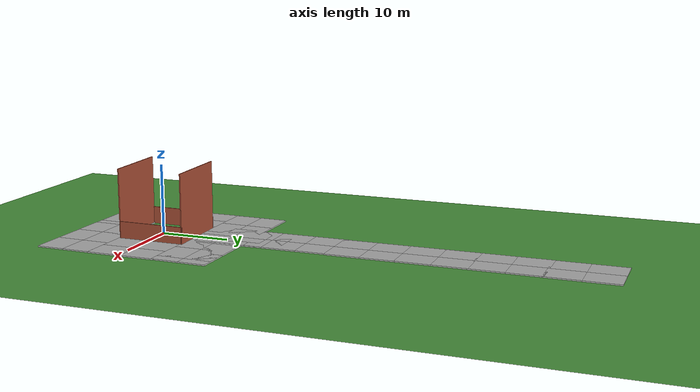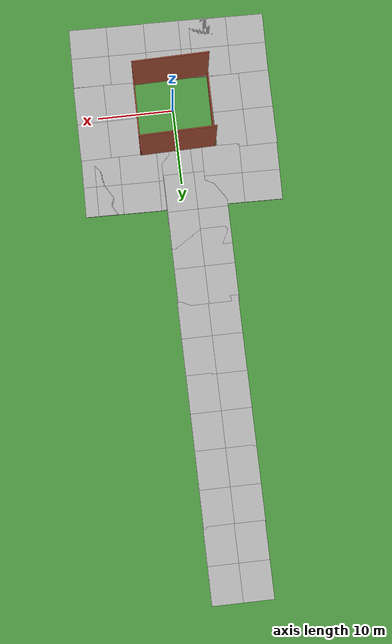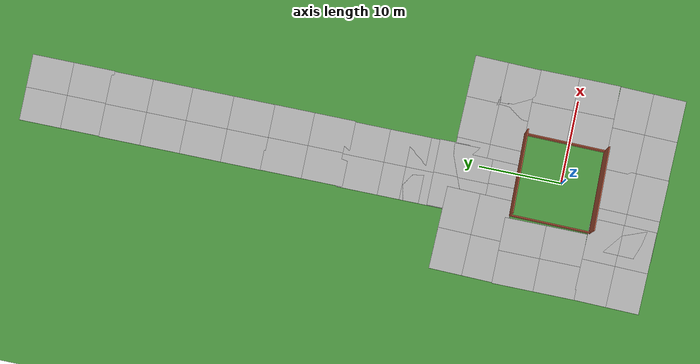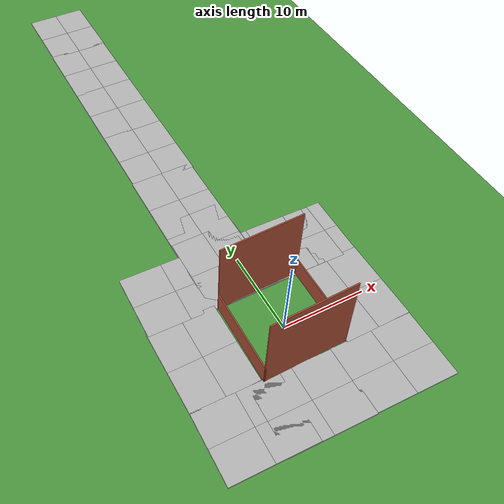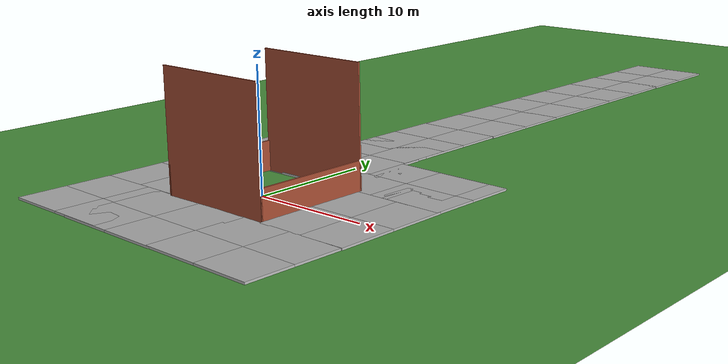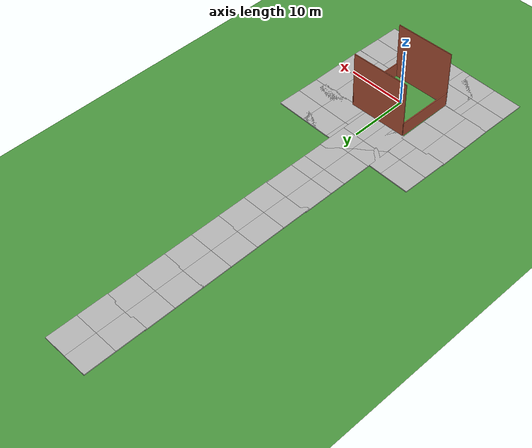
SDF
<sdf version="1.6">
 <world name="default">
  <light name="sun" type="directional">
   <pose>0 0 10 0 -0 0</pose>
   <diffuse>0.8 0.8 0.8 1</diffuse>
   <specular>0.2 0.2 0.2 1</specular>
   <attenuation>
    <range>1000</range>
    <constant>0.9</constant>
    <linear>0.01</linear>
    <quadratic>0.001</quadratic>
   </attenuation>
   <direction>-0.5 0.1 -0.9</direction>
  </light>
  <model name="ground_plane">
   <static>1</static>
   <link name="link">
    <collision name="collision">
     <geometry><plane><normal>0 0 1</normal><size>130 130</size></plane></geometry>
     <surface>
      <contact><collide_bitmask>65535</collide_bitmask></contact>
      <friction><ode><mu>100</mu><mu2>50</mu2></ode></friction>
     </surface>
    </collision>
    <visual name="visual">
     <cast_shadows>0</cast_shadows>
     <geometry><plane><normal>0 0 1</normal><size>130 130</size></plane></geometry>
     <material>
      <script><uri>file://media/materials/scripts/gazebo.material</uri><name>Gazebo/Grass</name></script>
     </material>
    </visual>
   </link>
  </model>
  <gravity>0 0 -9.8</gravity>
  <magnetic_field>6e-06 2.3e-05 -4.2e-05</magnetic_field>
  <atmosphere type="adiabatic"/>
  <physics name="default_physics" default="0" type="ode">
   <max_step_size>0.001</max_step_size>
   <real_time_factor>1</real_time_factor>
   <real_time_update_rate>1000</real_time_update_rate>
  </physics>
  <scene><ambient>0.4 0.4 0.4 1</ambient><background>0.7 0.7 0.7 1</background><shadows>1</shadows></scene>
  <audio><device>default</device></audio>
  <spherical_coordinates>
   <surface_model>EARTH_WGS84</surface_model>
   <latitude_deg>0</latitude_deg>
   <longitude_deg>0</longitude_deg>
   <elevation>0</elevation>
   <heading_deg>0</heading_deg>
  </spherical_coordinates>
  <model name="mud_box">
   <static>1</static>
   <link name="link">
    <collision name="collision"><geometry><box><size>8 10 0.2</size></box></geometry></collision>
    <visual name="visual_1">
     <pose>-2 2.5 0 0 -0 0</pose>
     <cast_shadows>0</cast_shadows>
     <geometry><box><size>4 5 0.2</size></box></geometry>
     <material>
      <script>
       <uri>model://mud_box/materials/scripts</uri>
       <uri>model://mud_box/materials/textures</uri>
       <name>vrc/mud</name>
      </script>
     </material>
    </visual>
    <visual name="visual_2">
     <pose>2 2.5 0 0 -0 0</pose>
     <cast_shadows>0</cast_shadows>
     <geometry><box><size>4 5 0.2</size></box></geometry>
     <material>
      <script>
       <uri>model://mud_box/materials/scripts</uri>
       <uri>model://mud_box/materials/textures</uri>
       <name>vrc/mud</name>
      </script>
     </material>
    </visual>
    <visual name="visual_3">
     <pose>2 -2.5 0 0 -0 0</pose>
     <cast_shadows>0</cast_shadows>
     <geometry><box><size>4 5 0.2</size></box></geometry>
     <material>
      <script>
       <uri>model://mud_box/materials/scripts</uri>
       <uri>model://mud_box/materials/textures</uri>
       <name>vrc/mud</name>
      </script>
     </material>
    </visual>
    <visual name="visual_4">
     <pose>-2 -2.5 0 0 -0 0</pose>
     <cast_shadows>0</cast_shadows>
     <geometry><box><size>4 5 0.2</size></box></geometry>
     <material>
      <script>
       <uri>model://mud_box/materials/scripts</uri>
       <uri>model://mud_box/materials/textures</uri>
       <name>vrc/mud</name>
      </script>
     </material>
    </visual>
   </link>
   <pose>-1.61006 59.86 0 0 -0 0</pose>
  </model>
  <model name="mud_box_clone">
   <static>1</static>
   <link name="link">
    <collision name="collision"><geometry><box><size>8 10 0.2</size></box></geometry></collision>
    <visual name="visual_1">
     <pose>-2 2.5 0 0 -0 0</pose>
     <cast_shadows>0</cast_shadows>
     <geometry><box><size>4 5 0.2</size></box></geometry>
     <material>
      <script>
       <uri>model://mud_box/materials/scripts</uri>
       <uri>model://mud_box/materials/textures</uri>
       <name>vrc/mud</name>
      </script>
     </material>
    </visual>
    <visual name="visual_2">
     <pose>2 2.5 0 0 -0 0</pose>
     <cast_shadows>0</cast_shadows>
     <geometry><box><size>4 5 0.2</size></box></geometry>
     <material>
      <script>
       <uri>model://mud_box/materials/scripts</uri>
       <uri>model://mud_box/materials/textures</uri>
       <name>vrc/mud</name>
      </script>
     </material>
    </visual>
    <visual name="visual_3">
     <pose>2 -2.5 0 0 -0 0</pose>
     <cast_shadows>0</cast_shadows>
     <geometry><box><size>4 5 0.2</size></box></geometry>
     <material>
      <script>
       <uri>model://mud_box/materials/scripts</uri>
       <uri>model://mud_box/materials/textures</uri>
       <name>vrc/mud</name>
      </script>
     </material>
    </visual>
    <visual name="visual_4">
     <pose>-2 -2.5 0 0 -0 0</pose>
     <cast_shadows>0</cast_shadows>
     <geometry><box><size>4 5 0.2</size></box></geometry>
     <material>
      <script>
       <uri>model://mud_box/materials/scripts</uri>
       <uri>model://mud_box/materials/textures</uri>
       <name>vrc/mud</name>
      </script>
     </material>
    </visual>
   </link>
   <pose>-1.6726 50.1755 0 0 -0 0</pose>
  </model>
  <model name="mud_box_clone_0">
   <static>1</static>
   <link name="link">
    <collision name="collision"><geometry><box><size>8 10 0.2</size></box></geometry></collision>
    <visual name="visual_1">
     <pose>-2 2.5 0 0 -0 0</pose>
     <cast_shadows>0</cast_shadows>
     <geometry><box><size>4 5 0.2</size></box></geometry>
     <material>
      <script>
       <uri>model://mud_box/materials/scripts</uri>
       <uri>model://mud_box/materials/textures</uri>
       <name>vrc/mud</name>
      </script>
     </material>
    </visual>
    <visual name="visual_2">
     <pose>2 2.5 0 0 -0 0</pose>
     <cast_shadows>0</cast_shadows>
     <geometry><box><size>4 5 0.2</size></box></geometry>
     <material>
      <script>
       <uri>model://mud_box/materials/scripts</uri>
       <uri>model://mud_box/materials/textures</uri>
       <name>vrc/mud</name>
      </script>
     </material>
    </visual>
    <visual name="visual_3">
     <pose>2 -2.5 0 0 -0 0</pose>
     <cast_shadows>0</cast_shadows>
     <geometry><box><size>4 5 0.2</size></box></geometry>
     <material>
      <script>
       <uri>model://mud_box/materials/scripts</uri>
       <uri>model://mud_box/materials/textures</uri>
       <name>vrc/mud</name>
      </script>
     </material>
    </visual>
    <visual name="visual_4">
     <pose>-2 -2.5 0 0 -0 0</pose>
     <cast_shadows>0</cast_shadows>
     <geometry><box><size>4 5 0.2</size></box></geometry>
     <material>
      <script>
       <uri>model://mud_box/materials/scripts</uri>
       <uri>model://mud_box/materials/textures</uri>
       <name>vrc/mud</name>
      </script>
     </material>
    </visual>
   </link>
   <pose>-1.67507 40.3539 0 0 -0 0</pose>
  </model>
  <model name="mud_box_clone_1">
   <static>1</static>
   <link name="link">
    <collision name="collision"><geometry><box><size>8 10 0.2</size></box></geometry></collision>
    <visual name="visual_1">
     <pose>-2 2.5 0 0 -0 0</pose>
     <cast_shadows>0</cast_shadows>
     <geometry><box><size>4 5 0.2</size></box></geometry>
     <material>
      <script>
       <uri>model://mud_box/materials/scripts</uri>
       <uri>model://mud_box/materials/textures</uri>
       <name>vrc/mud</name>
      </script>
     </material>
    </visual>
    <visual name="visual_2">
     <pose>2 2.5 0 0 -0 0</pose>
     <cast_shadows>0</cast_shadows>
     <geometry><box><size>4 5 0.2</size></box></geometry>
     <material>
      <script>
       <uri>model://mud_box/materials/scripts</uri>
       <uri>model://mud_box/materials/textures</uri>
       <name>vrc/mud</name>
      </script>
     </material>
    </visual>
    <visual name="visual_3">
     <pose>2 -2.5 0 0 -0 0</pose>
     <cast_shadows>0</cast_shadows>
     <geometry><box><size>4 5 0.2</size></box></geometry>
     <material>
      <script>
       <uri>model://mud_box/materials/scripts</uri>
       <uri>model://mud_box/materials/textures</uri>
       <name>vrc/mud</name>
      </script>
     </material>
    </visual>
    <visual name="visual_4">
     <pose>-2 -2.5 0 0 -0 0</pose>
     <cast_shadows>0</cast_shadows>
     <geometry><box><size>4 5 0.2</size></box></geometry>
     <material>
      <script>
       <uri>model://mud_box/materials/scripts</uri>
       <uri>model://mud_box/materials/textures</uri>
       <name>vrc/mud</name>
      </script>
     </material>
    </visual>
   </link>
   <pose>-1.65439 30.5223 0 0 -0 0</pose>
  </model>
  <model name="mud_box_clone_2">
   <static>1</static>
   <link name="link">
    <collision name="collision"><geometry><box><size>8 10 0.2</size></box></geometry></collision>
    <visual name="visual_1">
     <pose>-2 2.5 0 0 -0 0</pose>
     <cast_shadows>0</cast_shadows>
     <geometry><box><size>4 5 0.2</size></box></geometry>
     <material>
      <script>
       <uri>model://mud_box/materials/scripts</uri>
       <uri>model://mud_box/materials/textures</uri>
       <name>vrc/mud</name>
      </script>
     </material>
    </visual>
    <visual name="visual_2">
     <pose>2 2.5 0 0 -0 0</pose>
     <cast_shadows>0</cast_shadows>
     <geometry><box><size>4 5 0.2</size></box></geometry>
     <material>
      <script>
       <uri>model://mud_box/materials/scripts</uri>
       <uri>model://mud_box/materials/textures</uri>
       <name>vrc/mud</name>
      </script>
     </material>
    </visual>
    <visual name="visual_3">
     <pose>2 -2.5 0 0 -0 0</pose>
     <cast_shadows>0</cast_shadows>
     <geometry><box><size>4 5 0.2</size></box></geometry>
     <material>
      <script>
       <uri>model://mud_box/materials/scripts</uri>
       <uri>model://mud_box/materials/textures</uri>
       <name>vrc/mud</name>
      </script>
     </material>
    </visual>
    <visual name="visual_4">
     <pose>-2 -2.5 0 0 -0 0</pose>
     <cast_shadows>0</cast_shadows>
     <geometry><box><size>4 5 0.2</size></box></geometry>
     <material>
      <script>
       <uri>model://mud_box/materials/scripts</uri>
       <uri>model://mud_box/materials/textures</uri>
       <name>vrc/mud</name>
      </script>
     </material>
    </visual>
   </link>
   <pose>-1.75094 21.2661 0 0 -0 0</pose>
  </model>
  <model name="mud_box_clone_3">
   <static>1</static>
   <link name="link">
    <collision name="collision"><geometry><box><size>8 10 0.2</size></box></geometry></collision>
    <visual name="visual_1">
     <pose>-2 2.5 0 0 -0 0</pose>
     <cast_shadows>0</cast_shadows>
     <geometry><box><size>4 5 0.2</size></box></geometry>
     <material>
      <script>
       <uri>model://mud_box/materials/scripts</uri>
       <uri>model://mud_box/materials/textures</uri>
       <name>vrc/mud</name>
      </script>
     </material>
    </visual>
    <visual name="visual_2">
     <pose>2 2.5 0 0 -0 0</pose>
     <cast_shadows>0</cast_shadows>
     <geometry><box><size>4 5 0.2</size></box></geometry>
     <material>
      <script>
       <uri>model://mud_box/materials/scripts</uri>
       <uri>model://mud_box/materials/textures</uri>
       <name>vrc/mud</name>
      </script>
     </material>
    </visual>
    <visual name="visual_3">
     <pose>2 -2.5 0 0 -0 0</pose>
     <cast_shadows>0</cast_shadows>
     <geometry><box><size>4 5 0.2</size></box></geometry>
     <material>
      <script>
       <uri>model://mud_box/materials/scripts</uri>
       <uri>model://mud_box/materials/textures</uri>
       <name>vrc/mud</name>
      </script>
     </material>
    </visual>
    <visual name="visual_4">
     <pose>-2 -2.5 0 0 -0 0</pose>
     <cast_shadows>0</cast_shadows>
     <geometry><box><size>4 5 0.2</size></box></geometry>
     <material>
      <script>
       <uri>model://mud_box/materials/scripts</uri>
       <uri>model://mud_box/materials/textures</uri>
       <name>vrc/mud</name>
      </script>
     </material>
    </visual>
   </link>
   <pose>-1.76053 13.5904 0 0 -0 0</pose>
  </model>
  <model name="mud_box_clone_3_clone">
   <static>1</static>
   <link name="link">
    <collision name="collision"><geometry><box><size>8 10 0.2</size></box></geometry></collision>
    <visual name="visual_1">
     <pose>-2 2.5 0 0 -0 0</pose>
     <cast_shadows>0</cast_shadows>
     <geometry><box><size>4 5 0.2</size></box></geometry>
     <material>
      <script>
       <uri>model://mud_box/materials/scripts</uri>
       <uri>model://mud_box/materials/textures</uri>
       <name>vrc/mud</name>
      </script>
     </material>
    </visual>
    <visual name="visual_2">
     <pose>2 2.5 0 0 -0 0</pose>
     <cast_shadows>0</cast_shadows>
     <geometry><box><size>4 5 0.2</size></box></geometry>
     <material>
      <script>
       <uri>model://mud_box/materials/scripts</uri>
       <uri>model://mud_box/materials/textures</uri>
       <name>vrc/mud</name>
      </script>
     </material>
    </visual>
    <visual name="visual_3">
     <pose>2 -2.5 0 0 -0 0</pose>
     <cast_shadows>0</cast_shadows>
     <geometry><box><size>4 5 0.2</size></box></geometry>
     <material>
      <script>
       <uri>model://mud_box/materials/scripts</uri>
       <uri>model://mud_box/materials/textures</uri>
       <name>vrc/mud</name>
      </script>
     </material>
    </visual>
    <visual name="visual_4">
     <pose>-2 -2.5 0 0 -0 0</pose>
     <cast_shadows>0</cast_shadows>
     <geometry><box><size>4 5 0.2</size></box></geometry>
     <material>
      <script>
       <uri>model://mud_box/materials/scripts</uri>
       <uri>model://mud_box/materials/textures</uri>
       <name>vrc/mud</name>
      </script>
     </material>
    </visual>
   </link>
   <pose>-1.68944 10.2415 0 0 -0 0</pose>
  </model>
  <model name="mud_box_clone_3_clone_0">
   <static>1</static>
   <link name="link">
    <collision name="collision"><geometry><box><size>8 10 0.2</size></box></geometry></collision>
    <visual name="visual_1">
     <pose>-2 2.5 0 0 -0 0</pose>
     <cast_shadows>0</cast_shadows>
     <geometry><box><size>4 5 0.2</size></box></geometry>
     <material>
      <script>
       <uri>model://mud_box/materials/scripts</uri>
       <uri>model://mud_box/materials/textures</uri>
       <name>vrc/mud</name>
      </script>
     </material>
    </visual>
    <visual name="visual_2">
     <pose>2 2.5 0 0 -0 0</pose>
     <cast_shadows>0</cast_shadows>
     <geometry><box><size>4 5 0.2</size></box></geometry>
     <material>
      <script>
       <uri>model://mud_box/materials/scripts</uri>
       <uri>model://mud_box/materials/textures</uri>
       <name>vrc/mud</name>
      </script>
     </material>
    </visual>
    <visual name="visual_3">
     <pose>2 -2.5 0 0 -0 0</pose>
     <cast_shadows>0</cast_shadows>
     <geometry><box><size>4 5 0.2</size></box></geometry>
     <material>
      <script>
       <uri>model://mud_box/materials/scripts</uri>
       <uri>model://mud_box/materials/textures</uri>
       <name>vrc/mud</name>
      </script>
     </material>
    </visual>
    <visual name="visual_4">
     <pose>-2 -2.5 0 0 -0 0</pose>
     <cast_shadows>0</cast_shadows>
     <geometry><box><size>4 5 0.2</size></box></geometry>
     <material>
      <script>
       <uri>model://mud_box/materials/scripts</uri>
       <uri>model://mud_box/materials/textures</uri>
       <name>vrc/mud</name>
      </script>
     </material>
    </visual>
   </link>
   <pose>7.89791 9.19938 0 0 0 -1.5921</pose>
  </model>
  <model name="mud_box_clone_3_clone_0_clone">
   <static>1</static>
   <link name="link">
    <collision name="collision"><geometry><box><size>8 10 0.2</size></box></geometry></collision>
    <visual name="visual_1">
     <pose>-2 2.5 0 0 -0 0</pose>
     <cast_shadows>0</cast_shadows>
     <geometry><box><size>4 5 0.2</size></box></geometry>
     <material>
      <script>
       <uri>model://mud_box/materials/scripts</uri>
       <uri>model://mud_box/materials/textures</uri>
       <name>vrc/mud</name>
      </script>
     </material>
    </visual>
    <visual name="visual_2">
     <pose>2 2.5 0 0 -0 0</pose>
     <cast_shadows>0</cast_shadows>
     <geometry><box><size>4 5 0.2</size></box></geometry>
     <material>
      <script>
       <uri>model://mud_box/materials/scripts</uri>
       <uri>model://mud_box/materials/textures</uri>
       <name>vrc/mud</name>
      </script>
     </material>
    </visual>
    <visual name="visual_3">
     <pose>2 -2.5 0 0 -0 0</pose>
     <cast_shadows>0</cast_shadows>
     <geometry><box><size>4 5 0.2</size></box></geometry>
     <material>
      <script>
       <uri>model://mud_box/materials/scripts</uri>
       <uri>model://mud_box/materials/textures</uri>
       <name>vrc/mud</name>
      </script>
     </material>
    </visual>
    <visual name="visual_4">
     <pose>-2 -2.5 0 0 -0 0</pose>
     <cast_shadows>0</cast_shadows>
     <geometry><box><size>4 5 0.2</size></box></geometry>
     <material>
      <script>
       <uri>model://mud_box/materials/scripts</uri>
       <uri>model://mud_box/materials/textures</uri>
       <name>vrc/mud</name>
      </script>
     </material>
    </visual>
   </link>
   <pose>-8.11122 9.37306 0 0 0 -1.5921</pose>
  </model>
  <model name="mud_box_clone_3_clone_1">
   <static>1</static>
   <link name="link">
    <collision name="collision"><geometry><box><size>8 10 0.2</size></box></geometry></collision>
    <visual name="visual_1">
     <pose>-2 2.5 0 0 -0 0</pose>
     <cast_shadows>0</cast_shadows>
     <geometry><box><size>4 5 0.2</size></box></geometry>
     <material>
      <script>
       <uri>model://mud_box/materials/scripts</uri>
       <uri>model://mud_box/materials/textures</uri>
       <name>vrc/mud</name>
      </script>
     </material>
    </visual>
    <visual name="visual_2">
     <pose>2 2.5 0 0 -0 0</pose>
     <cast_shadows>0</cast_shadows>
     <geometry><box><size>4 5 0.2</size></box></geometry>
     <material>
      <script>
       <uri>model://mud_box/materials/scripts</uri>
       <uri>model://mud_box/materials/textures</uri>
       <name>vrc/mud</name>
      </script>
     </material>
    </visual>
    <visual name="visual_3">
     <pose>2 -2.5 0 0 -0 0</pose>
     <cast_shadows>0</cast_shadows>
     <geometry><box><size>4 5 0.2</size></box></geometry>
     <material>
      <script>
       <uri>model://mud_box/materials/scripts</uri>
       <uri>model://mud_box/materials/textures</uri>
       <name>vrc/mud</name>
      </script>
     </material>
    </visual>
    <visual name="visual_4">
     <pose>-2 -2.5 0 0 -0 0</pose>
     <cast_shadows>0</cast_shadows>
     <geometry><box><size>4 5 0.2</size></box></geometry>
     <material>
      <script>
       <uri>model://mud_box/materials/scripts</uri>
       <uri>model://mud_box/materials/textures</uri>
       <name>vrc/mud</name>
      </script>
     </material>
    </visual>
   </link>
   <pose>-9.26367 0.787329 0 0 -0 0</pose>
  </model>
  <model name="mud_box_clone_3_clone_2">
   <static>1</static>
   <link name="link">
    <collision name="collision"><geometry><box><size>8 10 0.2</size></box></geometry></collision>
    <visual name="visual_1">
     <pose>-2 2.5 0 0 -0 0</pose>
     <cast_shadows>0</cast_shadows>
     <geometry><box><size>4 5 0.2</size></box></geometry>
     <material>
      <script>
       <uri>model://mud_box/materials/scripts</uri>
       <uri>model://mud_box/materials/textures</uri>
       <name>vrc/mud</name>
      </script>
     </material>
    </visual>
    <visual name="visual_2">
     <pose>2 2.5 0 0 -0 0</pose>
     <cast_shadows>0</cast_shadows>
     <geometry><box><size>4 5 0.2</size></box></geometry>
     <material>
      <script>
       <uri>model://mud_box/materials/scripts</uri>
       <uri>model://mud_box/materials/textures</uri>
       <name>vrc/mud</name>
      </script>
     </material>
    </visual>
    <visual name="visual_3">
     <pose>2 -2.5 0 0 -0 0</pose>
     <cast_shadows>0</cast_shadows>
     <geometry><box><size>4 5 0.2</size></box></geometry>
     <material>
      <script>
       <uri>model://mud_box/materials/scripts</uri>
       <uri>model://mud_box/materials/textures</uri>
       <name>vrc/mud</name>
      </script>
     </material>
    </visual>
    <visual name="visual_4">
     <pose>-2 -2.5 0 0 -0 0</pose>
     <cast_shadows>0</cast_shadows>
     <geometry><box><size>4 5 0.2</size></box></geometry>
     <material>
      <script>
       <uri>model://mud_box/materials/scripts</uri>
       <uri>model://mud_box/materials/textures</uri>
       <name>vrc/mud</name>
      </script>
     </material>
    </visual>
   </link>
   <pose>8.852 0.419296 0 0 -0 0</pose>
  </model>
  <model name="mud_box_clone_3_clone_0_clone_0">
   <static>1</static>
   <link name="link">
    <collision name="collision"><geometry><box><size>8 10 0.2</size></box></geometry></collision>
    <visual name="visual_1">
     <pose>-2 2.5 0 0 -0 0</pose>
     <cast_shadows>0</cast_shadows>
     <geometry><box><size>4 5 0.2</size></box></geometry>
     <material>
      <script>
       <uri>model://mud_box/materials/scripts</uri>
       <uri>model://mud_box/materials/textures</uri>
       <name>vrc/mud</name>
      </script>
     </material>
    </visual>
    <visual name="visual_2">
     <pose>2 2.5 0 0 -0 0</pose>
     <cast_shadows>0</cast_shadows>
     <geometry><box><size>4 5 0.2</size></box></geometry>
     <material>
      <script>
       <uri>model://mud_box/materials/scripts</uri>
       <uri>model://mud_box/materials/textures</uri>
       <name>vrc/mud</name>
      </script>
     </material>
    </visual>
    <visual name="visual_3">
     <pose>2 -2.5 0 0 -0 0</pose>
     <cast_shadows>0</cast_shadows>
     <geometry><box><size>4 5 0.2</size></box></geometry>
     <material>
      <script>
       <uri>model://mud_box/materials/scripts</uri>
       <uri>model://mud_box/materials/textures</uri>
       <name>vrc/mud</name>
      </script>
     </material>
    </visual>
    <visual name="visual_4">
     <pose>-2 -2.5 0 0 -0 0</pose>
     <cast_shadows>0</cast_shadows>
     <geometry><box><size>4 5 0.2</size></box></geometry>
     <material>
      <script>
       <uri>model://mud_box/materials/scripts</uri>
       <uri>model://mud_box/materials/textures</uri>
       <name>vrc/mud</name>
      </script>
     </material>
    </visual>
   </link>
   <pose>6.22004 9.20365 0 0 0 -1.5921</pose>
  </model>
  <model name="mud_box_clone_3_clone_0_clone_1">
   <static>1</static>
   <link name="link">
    <collision name="collision"><geometry><box><size>8 10 0.2</size></box></geometry></collision>
    <visual name="visual_1">
     <pose>-2 2.5 0 0 -0 0</pose>
     <cast_shadows>0</cast_shadows>
     <geometry><box><size>4 5 0.2</size></box></geometry>
     <material>
      <script>
       <uri>model://mud_box/materials/scripts</uri>
       <uri>model://mud_box/materials/textures</uri>
       <name>vrc/mud</name>
      </script>
     </material>
    </visual>
    <visual name="visual_2">
     <pose>2 2.5 0 0 -0 0</pose>
     <cast_shadows>0</cast_shadows>
     <geometry><box><size>4 5 0.2</size></box></geometry>
     <material>
      <script>
       <uri>model://mud_box/materials/scripts</uri>
       <uri>model://mud_box/materials/textures</uri>
       <name>vrc/mud</name>
      </script>
     </material>
    </visual>
    <visual name="visual_3">
     <pose>2 -2.5 0 0 -0 0</pose>
     <cast_shadows>0</cast_shadows>
     <geometry><box><size>4 5 0.2</size></box></geometry>
     <material>
      <script>
       <uri>model://mud_box/materials/scripts</uri>
       <uri>model://mud_box/materials/textures</uri>
       <name>vrc/mud</name>
      </script>
     </material>
    </visual>
    <visual name="visual_4">
     <pose>-2 -2.5 0 0 -0 0</pose>
     <cast_shadows>0</cast_shadows>
     <geometry><box><size>4 5 0.2</size></box></geometry>
     <material>
      <script>
       <uri>model://mud_box/materials/scripts</uri>
       <uri>model://mud_box/materials/textures</uri>
       <name>vrc/mud</name>
      </script>
     </material>
    </visual>
   </link>
   <pose>7.72224 -8.52122 0 0 0 -1.5921</pose>
  </model>
  <model name="mud_box_clone_3_clone_0_clone_2">
   <static>1</static>
   <link name="link">
    <collision name="collision"><geometry><box><size>8 10 0.2</size></box></geometry></collision>
    <visual name="visual_1">
     <pose>-2 2.5 0 0 -0 0</pose>
     <cast_shadows>0</cast_shadows>
     <geometry><box><size>4 5 0.2</size></box></geometry>
     <material>
      <script>
       <uri>model://mud_box/materials/scripts</uri>
       <uri>model://mud_box/materials/textures</uri>
       <name>vrc/mud</name>
      </script>
     </material>
    </visual>
    <visual name="visual_2">
     <pose>2 2.5 0 0 -0 0</pose>
     <cast_shadows>0</cast_shadows>
     <geometry><box><size>4 5 0.2</size></box></geometry>
     <material>
      <script>
       <uri>model://mud_box/materials/scripts</uri>
       <uri>model://mud_box/materials/textures</uri>
       <name>vrc/mud</name>
      </script>
     </material>
    </visual>
    <visual name="visual_3">
     <pose>2 -2.5 0 0 -0 0</pose>
     <cast_shadows>0</cast_shadows>
     <geometry><box><size>4 5 0.2</size></box></geometry>
     <material>
      <script>
       <uri>model://mud_box/materials/scripts</uri>
       <uri>model://mud_box/materials/textures</uri>
       <name>vrc/mud</name>
      </script>
     </material>
    </visual>
    <visual name="visual_4">
     <pose>-2 -2.5 0 0 -0 0</pose>
     <cast_shadows>0</cast_shadows>
     <geometry><box><size>4 5 0.2</size></box></geometry>
     <material>
      <script>
       <uri>model://mud_box/materials/scripts</uri>
       <uri>model://mud_box/materials/textures</uri>
       <name>vrc/mud</name>
      </script>
     </material>
    </visual>
   </link>
   <pose>-1.99003 -8.36404 0 0 0 -1.5921</pose>
  </model>
  <model name="mud_box_clone_3_clone_0_clone_3">
   <static>1</static>
   <link name="link">
    <collision name="collision"><geometry><box><size>8 10 0.2</size></box></geometry></collision>
    <visual name="visual_1">
     <pose>-2 2.5 0 0 -0 0</pose>
     <cast_shadows>0</cast_shadows>
     <geometry><box><size>4 5 0.2</size></box></geometry>
     <material>
      <script>
       <uri>model://mud_box/materials/scripts</uri>
       <uri>model://mud_box/materials/textures</uri>
       <name>vrc/mud</name>
      </script>
     </material>
    </visual>
    <visual name="visual_2">
     <pose>2 2.5 0 0 -0 0</pose>
     <cast_shadows>0</cast_shadows>
     <geometry><box><size>4 5 0.2</size></box></geometry>
     <material>
      <script>
       <uri>model://mud_box/materials/scripts</uri>
       <uri>model://mud_box/materials/textures</uri>
       <name>vrc/mud</name>
      </script>
     </material>
    </visual>
    <visual name="visual_3">
     <pose>2 -2.5 0 0 -0 0</pose>
     <cast_shadows>0</cast_shadows>
     <geometry><box><size>4 5 0.2</size></box></geometry>
     <material>
      <script>
       <uri>model://mud_box/materials/scripts</uri>
       <uri>model://mud_box/materials/textures</uri>
       <name>vrc/mud</name>
      </script>
     </material>
    </visual>
    <visual name="visual_4">
     <pose>-2 -2.5 0 0 -0 0</pose>
     <cast_shadows>0</cast_shadows>
     <geometry><box><size>4 5 0.2</size></box></geometry>
     <material>
      <script>
       <uri>model://mud_box/materials/scripts</uri>
       <uri>model://mud_box/materials/textures</uri>
       <name>vrc/mud</name>
      </script>
     </material>
    </visual>
   </link>
   <pose>-8.34112 -8.1842 0 0 0 -1.5921</pose>
  </model>
  <model name="4walls">
   <pose>-0.10497 0.524349 0 0 -0 0</pose>
   <link name="Wall_10">
    <collision name="Wall_10_Collision">
     <geometry><box><size>10 0.15 10</size></box></geometry>
     <pose>0 0 5 0 -0 0</pose>
    </collision>
    <visual name="Wall_10_Visual">
     <pose>0 0 5 0 -0 0</pose>
     <geometry><box><size>10 0.15 10</size></box></geometry>
     <material>
      <script><uri>file://media/materials/scripts/gazebo.material</uri><name>Gazebo/Bricks</name></script>
      <ambient>1 1 1 1</ambient>
     </material>
     <meta><layer>0</layer></meta>
    </visual>
    <pose>0.061088 4.85523 0 0 -0 0.018383</pose>
   </link>
   <link name="Wall_11">
    <collision name="Wall_11_Collision">
     <geometry><box><size>9.86129 0.15 2.5</size></box></geometry>
     <pose>0 0 1.25 0 -0 0</pose>
    </collision>
    <visual name="Wall_11_Visual">
     <pose>0 0 1.25 0 -0 0</pose>
     <geometry><box><size>9.86129 0.15 2.5</size></box></geometry>
     <material>
      <script><uri>file://media/materials/scripts/gazebo.material</uri><name>Gazebo/Bricks</name></script>
      <ambient>1 1 1 1</ambient>
     </material>
     <meta><layer>0</layer></meta>
    </visual>
    <pose>4.92408 0.090501 0 0 -0 -1.5834</pose>
   </link>
   <link name="Wall_12">
    <collision name="Wall_12_Collision">
     <geometry><box><size>10 0.15 10</size></box></geometry>
     <pose>0 0 5 0 -0 0</pose>
    </collision>
    <visual name="Wall_12_Visual">
     <pose>0 0 5 0 -0 0</pose>
     <geometry><box><size>10 0.15 10</size></box></geometry>
     <material>
      <script><uri>file://media/materials/scripts/gazebo.material</uri><name>Gazebo/Bricks</name></script>
      <ambient>1 1 1 1</ambient>
     </material>
     <meta><layer>0</layer></meta>
    </visual>
    <pose>-0.061088 -4.85526 0 0 -0 -3.12322</pose>
   </link>
   <link name="Wall_13">
    <collision name="Wall_13_Collision">
     <geometry><box><size>9.86122 0.15 2.5</size></box></geometry>
     <pose>0 0 1.25 0 -0 0</pose>
    </collision>
    <visual name="Wall_13_Visual">
     <pose>0 0 1.25 0 -0 0</pose>
     <geometry><box><size>9.86122 0.15 2.5</size></box></geometry>
     <material>
      <script><uri>file://media/materials/scripts/gazebo.material</uri><name>Gazebo/Bricks</name></script>
      <ambient>1 1 1 1</ambient>
     </material>
     <meta><layer>0</layer></meta>
    </visual>
    <pose>-4.92408 -0.090532 0 0 -0 1.55823</pose>
   </link>
   <static>1</static>
  </model>
 </world>
</sdf>
